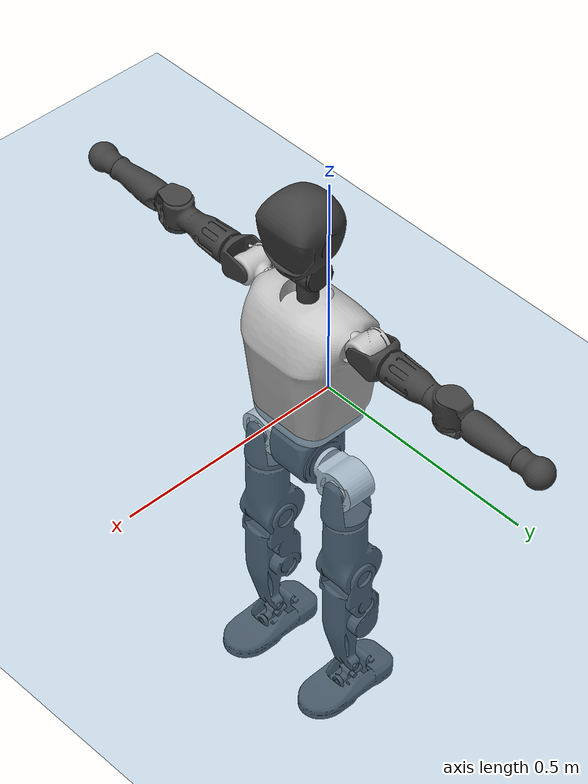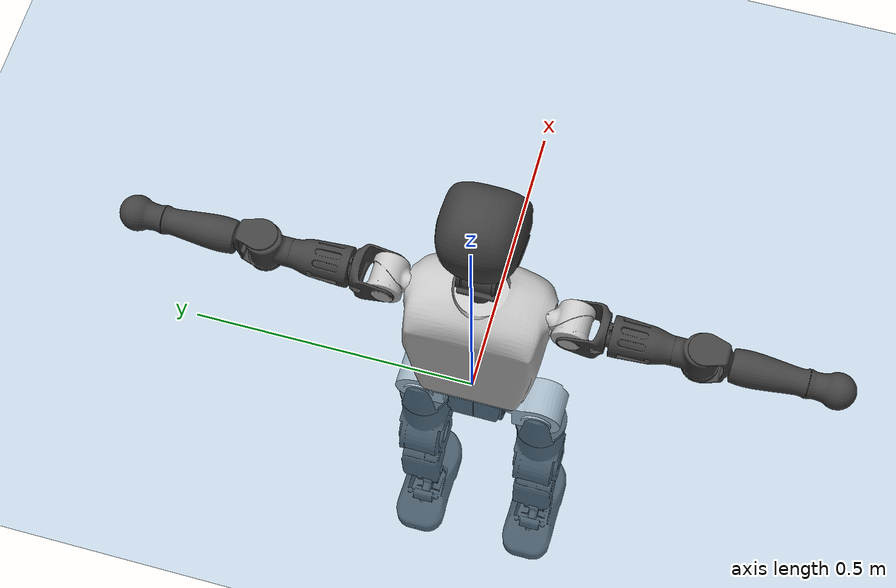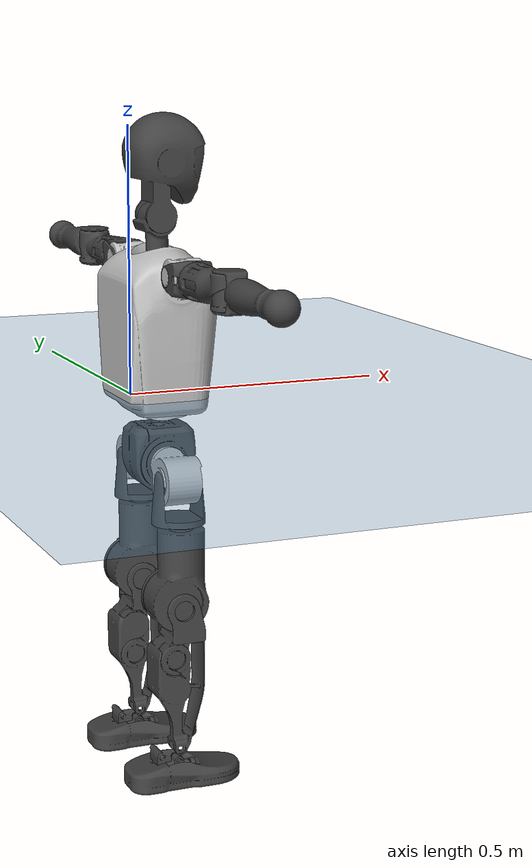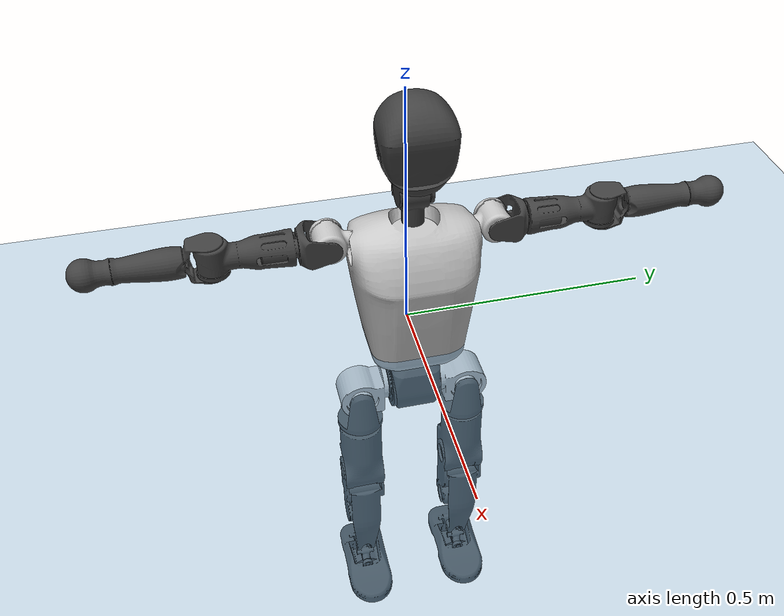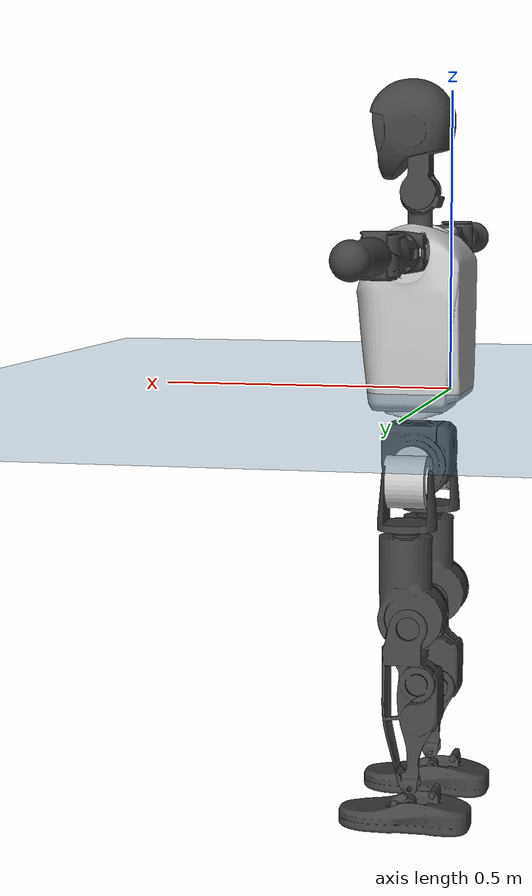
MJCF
<mujoco model="T1">
  <compiler angle="radian" assetdir="assets" balanceinertia="true" inertiafromgeom="false"/>

  <option timestep="0.005" density="1.2" viscosity="2e-05"/>

  <size nkey="1"/>

  <visual>
    <quality shadowsize="8192"/>
    <map shadowclip="0.5"/>
  </visual>

  <default>
    <default class="/">
      <joint armature="0.01" damping="0.01" frictionloss="0.1"/>
      <geom contype="0" conaffinity="0" group="1" solref="-1000 -80"/>
      <site size="0.01 0.005 0.005" group="5"/>
      <general forcelimited="true" biastype="affine" gainprm="25" biasprm="0 -25 -0.6"/>
      <default class="t1">
        <geom rgba="0.25 0.25 0.25 1"/>
        <default class="visual">
          <geom type="mesh" group="2"/>
        </default>
        <default class="collision">
          <geom group="3"/>
        </default>
        <default class="foot">
          <geom size="0.1115 0.05 0.015" type="box" condim="6" group="4" priority="1" solimp="0.015 1 0.015"/>
        </default>
        <default class="reward_collision_sphere">
          <geom group="5" rgba="1 0 0 1"/>
        </default>
      </default>
    </default>
  </default>

  <asset>
    <texture type="skybox" colorspace="auto" name="//unnamed_texture_0" builtin="gradient" rgb1="0.95 0.95 0.95" rgb2="0.95 0.95 0.95" width="100" height="600"/>
    <texture type="2d" colorspace="auto" name="texplane" builtin="checker" rgb1="0.345 0.575 0.748" rgb2="0.345 0.575 0.748" markrgb="1 1 1" width="512" height="512"/>
    <material name="MatPlane" class="/" texture="texplane" texuniform="true" texrepeat="2 2" specular="0.9"/>
    <mesh name="Trunk" class="/" file="Trunk.stl"/>
    <mesh name="H1" class="/" file="H1.stl"/>
    <mesh name="H2" class="/" file="H2.stl"/>
    <mesh name="AL1" class="/" file="AL1.stl"/>
    <mesh name="AL2" class="/" file="AL2.stl"/>
    <mesh name="AL3" class="/" file="AL3.stl"/>
    <mesh name="left_hand_link" class="/" file="left_hand_link.stl"/>
    <mesh name="AR1" class="/" file="AR1.stl"/>
    <mesh name="AR2" class="/" file="AR2.stl"/>
    <mesh name="AR3" class="/" file="AR3.stl"/>
    <mesh name="right_hand_link" class="/" file="right_hand_link.stl"/>
    <mesh name="Waist" class="/" file="Waist.stl"/>
    <mesh name="Hip_Pitch_Left" class="/" file="Hip_Pitch_Left.stl"/>
    <mesh name="Hip_Roll_Left" class="/" file="Hip_Roll_Left.stl"/>
    <mesh name="Hip_Yaw_Left" class="/" file="Hip_Yaw_Left.stl"/>
    <mesh name="Shank_Left" class="/" file="Shank_Left.stl"/>
    <mesh name="Ankle_Cross_Left" class="/" file="Ankle_Cross_Left.stl"/>
    <mesh name="left_foot_link" class="/" file="left_foot_link.stl"/>
    <mesh name="Hip_Pitch_Right" class="/" file="Hip_Pitch_Right.stl"/>
    <mesh name="Hip_Roll_Right" class="/" file="Hip_Roll_Right.stl"/>
    <mesh name="Hip_Yaw_Right" class="/" file="Hip_Yaw_Right.stl"/>
    <mesh name="Shank_Right" class="/" file="Shank_Right.stl"/>
    <mesh name="Ankle_Cross_Right" class="/" file="Ankle_Cross_Right.stl"/>
    <mesh name="right_foot_link" class="/" file="right_foot_link.stl"/>
  </asset>

  <worldbody>
    <geom name="floor" class="/" size="100 100 0.125" type="plane" group="0" material="MatPlane"/>
    <light name="toplight_shadow" class="/" pos="0 0 5" dir="0.0990148 0.0990148 -0.990148" type="directional" ambient="0.04 0.04 0.04" diffuse="0.55 0.55 0.55" specular="0.12 0.12 0.12"/>
    <light name="toplight_fill" class="/" pos="0 0 5" dir="0.0990148 0.0990148 -0.990148" type="directional" castshadow="false" ambient="0.04 0.04 0.04" diffuse="0.3 0.3 0.3" specular="0.08 0.08 0.08"/>
    <body name="trunk" childclass="t1" pos="-0.000254148 0.000644493 0.000272039" quat="1 -0.000537701 0.00012377 -0.000791542">
      <inertial pos="0.0457528 -0.00200272 0.115817" quat="0.999975 0.000538683 -0.00698618 -0.00085328" mass="11.4829" diaginertia="0.044176 0.0892171 0.0852382"/>
      <joint name="//unnamed_joint_0" type="free" armature="0" damping="0" frictionloss="0"/>
      <geom name="//unnamed_geom_1" class="visual" rgba="0.76 0.76 0.76 1" mesh="Trunk"/>
      <geom name="//unnamed_geom_2" class="collision" size="0.0746244 0.0994992 0.149249" pos="0.0517589 0 0.131323" type="box"/>
      <geom name="//unnamed_geom_3" class="reward_collision_sphere" size="0.114424" pos="0.0517589 0 0.109436"/>
      <geom name="//unnamed_geom_4" class="reward_collision_sphere" size="0.0149249" pos="0.0517589 0.0873776 0"/>
      <geom name="//unnamed_geom_5" class="reward_collision_sphere" size="0.0149249" pos="0.0517589 -0.0873776 0"/>
      <geom name="//unnamed_geom_6" class="reward_collision_sphere" size="0.0149249" pos="0.0517589 0.109993 0.196984"/>
      <geom name="//unnamed_geom_7" class="reward_collision_sphere" size="0.0149249" pos="0.0517589 -0.109993 0.196984"/>
      <site name="imu" pos="0.00200705 -0.00260899 -0.00207857" size="0.00994992"/>
      <camera name="track" pos="0 -2.05594 0" quat="0.707107 0.707107 0 0" mode="trackcom"/>
      <camera name="ego_camera" pos="0.105243 0 0.45963" quat="-0.5 -0.5 0.5 0.5"/>
      <body name="H1" pos="0.0541132 -0.000930658 0.264422" quat="1 0.000236658 0.000464282 6.80521e-05">
        <inertial pos="-0.00104567 0.000446075 0.0619829" quat="0.766014 -0.00458499 0.000765109 0.642807" mass="0.427506" diaginertia="0.000112505 0.00024575 0.000227705"/>
        <joint name="AAHead_yaw" pos="0 0 0" axis="-0.00163088 0.00920147 0.999956" stiffness="0.00625806" range="-1.55349 1.56832" armature="0.0100355" damping="0.00897397" frictionloss="0.0986257"/>
        <geom name="//unnamed_geom_8" class="visual" mesh="H1"/>
        <body name="H2" pos="-0.00077633 0.00178453 0.0683434" quat="1 -2.81078e-05 1.66867e-05 2.1842e-06">
          <inertial pos="0.00529612 0.00246756 0.10782" quat="0.988447 0.106289 -0.0744507 -0.0783106" mass="0.619144" diaginertia="0.000984052 0.00216952 0.00268879"/>
          <joint name="Head_pitch" pos="0 0 0" axis="-0.00494467 -0.999988 5.37071e-05" range="-1.21906 0.348803" armature="0.00895582" damping="0.00627553" frictionloss="0.111365"/>
          <geom name="//unnamed_geom_9" class="visual" mesh="H2"/>
          <geom name="//unnamed_geom_10" class="collision" size="0.0795994" pos="0.00862649 0 0.120379"/>
          <geom name="//unnamed_geom_11" class="reward_collision_sphere" size="0.0895493" pos="0.017253 0 0.109436"/>
        </body>
      </body>
      <body name="AL1" pos="0.051757 0.108326 0.237613" quat="1 1.08527e-05 0.00040813 -5.19332e-05">
        <inertial pos="-0.00274777 0.0466658 0.00109274" quat="0.50332 0.49783 -0.50284 0.49597" mass="0.524123" diaginertia="0.000650335 0.00148674 0.000454858"/>
        <joint name="Left_Shoulder_Pitch" pos="0 0 0" axis="-0.00508167 0.999933 0.0104396" range="-3.31584 1.23387" armature="0.00998576" damping="0.00695468" frictionloss="0.0983656"/>
        <geom name="//unnamed_geom_12" class="visual" rgba="0.76 0.76 0.76 1" mesh="AL1"/>
        <body name="AL2" pos="0.000102757 0.047929 -0.000642283" quat="1 2.95009e-06 9.0756e-06 0.00011952">
          <inertial pos="0.00292873 0.0395509 -0.00152551" quat="0.486928 0.514736 -0.489041 0.508712" mass="0.157619" diaginertia="0.000190625 0.000394967 0.00027869"/>
          <joint name="Left_Shoulder_Roll" pos="0 0 0" axis="-1 -0.000414085 0.000650935" range="-1.57021 1.74553" armature="0.010098" damping="0.00612376" frictionloss="0.100494"/>
          <geom name="//unnamed_geom_13" class="visual" mesh="AL2"/>
          <body name="AL3" pos="0.000483687 0.0619498 -0.000311489" quat="1 -3.33824e-05 -5.08514e-05 -0.000122113">
            <inertial pos="-0.000142956 0.0876603 0.000127847" quat="0.713475 0.700675 0.00155834 0.00253344" mass="1.00207" diaginertia="0.00610103 0.0147266 0.000946873"/>
            <joint name="Left_Elbow_Pitch" pos="0 0 0" axis="-0.000473248 -0.999999 -0.00131052" range="-2.25306 2.26959" armature="0.00996736" damping="0.022403" frictionloss="0.11034"/>
            <geom name="//unnamed_geom_14" class="visual" mesh="AL3"/>
            <geom name="//unnamed_geom_15" class="collision" size="0.0298498 0.0746244" pos="0 0.0513986 0" quat="0.707105 0.707108 0 0" type="cylinder"/>
            <geom name="//unnamed_geom_16" class="reward_collision_sphere" size="0.0358197"/>
            <body name="left_hand_link" pos="0.00222796 0.151805 0.00110883" quat="1 1.80571e-05 3.53249e-05 4.06322e-05">
              <inertial pos="0.00162664 0.112502 -0.00100371" quat="0.705574 0.708626 0.00369578 0.000508305" mass="0.32152" diaginertia="0.00386891 0.00955442 0.000341303"/>
              <joint name="Left_Elbow_Yaw" pos="0 0 0" axis="-0.000307085 -8.28344e-05 1" range="-2.45489 0.0156602" armature="0.00993816" damping="0.00826832" frictionloss="0.0992285"/>
              <geom name="//unnamed_geom_17" class="visual" mesh="left_hand_link"/>
              <geom name="//unnamed_geom_18" class="collision" size="0.0298498 0.0870618" pos="0 0.133636 0" quat="0.707105 0.707108 0 0" type="cylinder"/>
              <geom name="//unnamed_geom_19" class="reward_collision_sphere" size="0.0497496"/>
              <geom name="//unnamed_geom_20" class="reward_collision_sphere" size="0.0348247" pos="0 0.113077 0"/>
              <geom name="//unnamed_geom_21" class="reward_collision_sphere" size="0.0348247" pos="0 0.221014 0"/>
            </body>
          </body>
        </body>
      </body>
      <body name="AR1" pos="0.0485346 -0.110144 0.240086" quat="0.999999 -0.00103941 0.000298901 -0.000450606">
        <inertial pos="-0.00141825 -0.0454992 -0.000988398" quat="0.50506 0.49588 -0.50301 0.495983" mass="0.535015" diaginertia="0.000663213 0.00151273 0.000470668"/>
        <joint name="Right_Shoulder_Pitch" pos="0 0 0" axis="-0.000113902 -0.999998 -0.00201308" range="-1.22599 3.30763" armature="0.010445" damping="7.98768e-05" frictionloss="0.103836"/>
        <geom name="//unnamed_geom_22" class="visual" rgba="0.76 0.76 0.76 1" mesh="AR1"/>
        <body name="AR2" pos="-0.000738516 -0.0474013 -0.00196582" quat="1 -0.000120841 0.00035467 0.000703787">
          <inertial pos="0.00438137 -0.0398933 0.000622168" quat="0.512842 0.486286 -0.51166 0.488593" mass="0.157115" diaginertia="0.000190442 0.000391889 0.000276221"/>
          <joint name="Right_Shoulder_Roll" pos="0 0 0" axis="-0.999967 -0.00395906 0.00711416" range="-1.72286 1.58655" armature="0.0099785" damping="0.000757154" frictionloss="0.0976876"/>
          <geom name="//unnamed_geom_23" class="visual" mesh="AR2"/>
          <body name="AR3" pos="-0.000755245 -0.0628116 -0.00062655" quat="1 -0.000712856 0.000276299 0.0003878">
            <inertial pos="0.00200344 -0.087364 -0.000939086" quat="0.707464 0.706749 -0.000643521 -0.000329705" mass="1.00558" diaginertia="0.00631223 0.0152839 0.00100444"/>
            <joint name="Right_Elbow_Pitch" pos="0 0 0" axis="0.00162468 0.999997 -0.0015828" stiffness="0.00336475" range="-2.25162 2.22001" armature="0.0100084" damping="0.0113682" frictionloss="0.096039"/>
            <geom name="//unnamed_geom_24" class="visual" mesh="AR3"/>
            <geom name="//unnamed_geom_25" class="collision" size="0.0298498 0.0746244" pos="0 -0.0513986 0" quat="0.707105 0.707108 0 0" type="cylinder"/>
            <geom name="//unnamed_geom_26" class="reward_collision_sphere" size="0.0358197"/>
            <body name="right_hand_link" pos="-0.000477646 -0.151074 0.000903812" quat="1 -0.00064102 0.000304139 -1.88887e-05">
              <inertial pos="0.00171508 -0.113674 -0.0005584" quat="0.706727 0.707486 3.11074e-05 0.000320472" mass="0.309427" diaginertia="0.00367055 0.00905147 0.000335636"/>
              <joint name="Right_Elbow_Yaw" pos="0 0 0" axis="0.00116472 -0.000296109 0.999999" stiffness="0.0026196" range="-0.00505793 2.40659" armature="0.0104061" damping="0.00494834" frictionloss="0.100599"/>
              <geom name="//unnamed_geom_27" class="visual" mesh="right_hand_link"/>
              <geom name="//unnamed_geom_28" class="collision" size="0.0298498 0.0870618" pos="0 -0.133636 0" quat="0.707105 0.707108 0 0" type="cylinder"/>
              <geom name="//unnamed_geom_29" class="reward_collision_sphere" size="0.0497496"/>
              <geom name="//unnamed_geom_30" class="reward_collision_sphere" size="0.0348247" pos="0 -0.113077 0"/>
              <geom name="//unnamed_geom_31" class="reward_collision_sphere" size="0.0348247" pos="0 -0.221014 0"/>
            </body>
          </body>
        </body>
      </body>
      <body name="Waist" pos="0.0535567 -0.00281176 -0.126817" quat="1 5.34829e-05 -0.000196168 4.04043e-05">
        <inertial pos="0.000534548 0.000433612 0.00776539" quat="0.983764 0.00195586 -0.179458 8.49474e-05" mass="2.50433" diaginertia="0.0025953 0.00611838 0.00737127"/>
        <joint name="Waist" pos="0 0 0" axis="-0.00321261 -0.00518157 0.999981" stiffness="0.00203477" range="-1.55342 1.59045" armature="0.0102363" damping="0.000646227" frictionloss="0.0982134"/>
        <geom name="//unnamed_geom_32" class="visual" mesh="Waist"/>
        <body name="Hip_Pitch_Left" pos="0.00134809 0.109652 0.000142758" quat="1 0.000150818 -7.46908e-06 0.000175787">
          <inertial pos="0.00156812 -0.00726195 -0.0216864" quat="0.976034 0.217175 0.0131153 0.00454096" mass="1.02222" diaginertia="0.000870426 0.00169038 0.00198323"/>
          <joint name="Left_Hip_Pitch" pos="0 0 0" axis="-0.00054978 1 -0.000195877" range="-1.80286 1.60239" armature="0.0102574" damping="0.00264078" frictionloss="0.0984269"/>
          <geom name="//unnamed_geom_33" class="visual" rgba="0.76 0.76 0.76 1" mesh="Hip_Pitch_Left"/>
          <body name="Hip_Roll_Left" pos="0.00243941 0.000171435 -0.0231459" quat="1 -7.44646e-06 -1.75697e-06 -4.3635e-06">
            <inertial pos="0.00109866 0.000563622 -0.0601167" quat="0.707335 -0.00732806 -0.00731817 0.706803" mass="0.387755" diaginertia="0.000857596 0.00173935 0.000804352"/>
            <joint name="Left_Hip_Roll" pos="0 0 0" axis="-0.999997 -0.00112668 -0.00197106" range="-1.55073 0.241008" armature="0.0099235" damping="0.00465326" frictionloss="0.101823"/>
            <geom name="//unnamed_geom_34" class="visual" mesh="Hip_Roll_Left"/>
            <geom name="//unnamed_geom_35" class="reward_collision_sphere" size="0.0547246"/>
            <body name="Hip_Yaw_Left" pos="-0.000265405 0.0013812 -0.0877295" quat="1 -0.000140205 2.44609e-05 -0.000115598">
              <inertial pos="-0.00558043 -0.000370704 -0.0987108" quat="0.699588 -0.0331174 -0.0253128 0.71333" mass="2.0896" diaginertia="0.0120402 0.0280364 0.00400175"/>
              <joint name="Left_Hip_Yaw" pos="0 0 0" axis="0.000671759 -0.0017939 -0.999998" range="-1.00003 1.05402" armature="0.00978779" damping="0" frictionloss="0.0996133"/>
              <geom name="//unnamed_geom_36" class="visual" mesh="Hip_Yaw_Left"/>
              <geom name="//unnamed_geom_37" class="collision" size="0.0497496 0.0795994" type="cylinder"/>
              <body name="Shank_Left" pos="-0.0118724 0.00104744 -0.148984" quat="1 1.31598e-05 0.000201693 -0.000250427">
                <inertial pos="-0.00590129 0.000762104 -0.137382" quat="0.997684 0.00161078 -0.0237751 0.0637038" mass="1.73538" diaginertia="0.016822 0.0399279 0.0029118"/>
                <joint name="Left_Knee_Pitch" pos="0 0 0" axis="0.00401854 0.999979 0.0051097" stiffness="0.00216884" range="-0.00653923 2.34745" armature="0.00988696" damping="0.0168159" frictionloss="0.104164"/>
                <geom name="//unnamed_geom_38" class="visual" mesh="Shank_Left"/>
                <geom name="//unnamed_geom_39" class="collision" size="0.0497496 0.0746244" pos="0 0 -0.131323" type="cylinder"/>
                <geom name="//unnamed_geom_40" class="reward_collision_sphere" size="0.0646745"/>
                <body name="Ankle_Cross_Left" pos="0.00106079 0.000868472 -0.307933" quat="1 -0.000177113 0.000437617 0.000156757">
                  <inertial pos="-0.00497124 0.00208008 -0.00889832" quat="0.443112 0.551032 0.551027 0.443153" mass="0.0712909" diaginertia="1.37684e-05 2.86957e-05 1.77802e-05"/>
                  <joint name="Left_Ankle_Pitch" pos="0 0 0" axis="-0.00501438 0.999986 0.00162728" range="-0.875013 0.338267" armature="0.00917468" damping="0.00303294" frictionloss="0.0980019"/>
                  <geom name="//unnamed_geom_41" class="visual" mesh="Ankle_Cross_Left"/>
                  <body name="left_foot_link" pos="0.00067948 -0.000779507 -0.0114854" quat="0.999999 0.000215308 -0.0001754 -0.00113548">
                    <inertial pos="-0.00209887 -0.000308828 -0.00897048" quat="-0.00162681 0.61951 -0.000148818 0.784987" mass="0.671099" diaginertia="0.00127631 0.0027034 0.00346055"/>
                    <joint name="Left_Ankle_Roll" pos="0 0 0" axis="-0.999998 -0.0010273 -0.00141318" range="-0.476212 0.400865" armature="0.00973561" damping="0.00820223" frictionloss="0.0901984"/>
                    <geom name="//unnamed_geom_42" class="visual" mesh="left_foot_link"/>
                    <geom name="left_foot" class="foot" size="0.104117 0.0503039 0.0151469" pos="0.00862649 0 -0.0164153"/>
                    <geom name="//unnamed_geom_44" class="reward_collision_sphere" size="0.0517396" pos="0.00862649 0 -0.0164153"/>
                    <geom name="//unnamed_geom_45" class="reward_collision_sphere" size="0.0298498" pos="0.0819516 -0.0236433 -0.0164153"/>
                    <geom name="//unnamed_geom_46" class="reward_collision_sphere" size="0.0298498" pos="-0.0603854 -0.0236433 -0.0164153"/>
                    <site name="left_foot" class="foot" pos="0.00862649 0 -0.0164153" size="0.00994992"/>
                  </body>
                </body>
              </body>
            </body>
          </body>
        </body>
        <body name="Hip_Pitch_Right" pos="-0.00234507 -0.110604 2.62655e-06" quat="1 -0.000148305 4.96103e-05 -0.000286">
          <inertial pos="-0.000525915 0.00702444 -0.019724" quat="0.973766 -0.227119 0.0131037 -0.0050485" mass="1.00158" diaginertia="0.000882655 0.00168265 0.00199409"/>
          <joint name="Right_Hip_Pitch" pos="0 0 0" axis="0.000845673 -1 -0.000496767" stiffness="0.00541915" range="-1.55253 1.80684" armature="0.0101397" damping="0.00753829" frictionloss="0.10421"/>
          <geom name="//unnamed_geom_47" class="visual" rgba="0.76 0.76 0.76 1" mesh="Hip_Pitch_Right"/>
          <body name="Hip_Roll_Right" pos="0.00192176 -0.00195283 -0.0228533" quat="1 -5.26035e-06 1.74137e-05 -4.26598e-05">
            <inertial pos="0.00021415 -0.00107629 -0.0581438" quat="0.706352 -0.00718741 -0.00547555 0.707803" mass="0.38699" diaginertia="0.000827847 0.00175442 0.000808133"/>
            <joint name="Right_Hip_Roll" pos="0 0 0" axis="-1 -4.722e-05 -0.00010504" stiffness="0.00797982" range="-0.200087 1.52558" armature="0.00983953" damping="0" frictionloss="0.0890418"/>
            <geom name="//unnamed_geom_48" class="visual" mesh="Hip_Roll_Right"/>
            <geom name="//unnamed_geom_49" class="reward_collision_sphere" size="0.0547246"/>
            <body name="Hip_Yaw_Right" pos="0.00231872 -0.000748259 -0.0893134" quat="1 -5.76618e-05 -1.22398e-05 0.000115229">
              <inertial pos="-0.00595752 -0.000542957 -0.0974881" quat="0.717666 -0.0285038 -0.043976 0.694413" mass="2.11183" diaginertia="0.011966 0.0289796 0.00396069"/>
              <joint name="Right_Hip_Yaw" pos="0 0 0" axis="-0.0010418 0.00779895 -0.999969" stiffness="0.00118328" range="-0.994458 1.01047" armature="0.00953465" damping="0.0110341" frictionloss="0.102208"/>
              <geom name="//unnamed_geom_50" class="visual" mesh="Hip_Yaw_Right"/>
              <geom name="//unnamed_geom_51" class="collision" size="0.0497496 0.0795994" type="cylinder"/>
              <body name="Shank_Right" pos="-0.00963861 -0.000759056 -0.146562" quat="1 -4.71386e-05 4.58377e-06 -0.000108657">
                <inertial pos="-0.00594737 0.000447011 -0.134321" quat="0.999501 0.000326216 -0.0135829 -0.0285101" mass="1.80448" diaginertia="0.0172286 0.0407307 0.00312118"/>
                <joint name="Right_Knee_Pitch" pos="0 0 0" axis="-0.00552785 -0.999969 0.00563532" range="-2.34036 0.000390399" armature="0.00990744" damping="0.0182891" frictionloss="0.0973594"/>
                <geom name="//unnamed_geom_52" class="visual" mesh="Shank_Right"/>
                <geom name="//unnamed_geom_53" class="collision" size="0.0497496 0.0746244" pos="0 0 -0.131323" type="cylinder"/>
                <geom name="//unnamed_geom_54" class="reward_collision_sphere" size="0.0646745"/>
                <body name="Ankle_Cross_Right" pos="-0.000636772 -0.000814963 -0.307887" quat="1 -0.000253953 -0.000319268 0.000543823">
                  <inertial pos="-0.00369136 0.00145636 -0.00867118" quat="0.443033 0.551359 0.550779 0.443134" mass="0.0722001" diaginertia="1.34614e-05 2.94847e-05 1.7651e-05"/>
                  <joint name="Right_Ankle_Pitch" pos="0 0 0" axis="0.000481555 -1 0.000575156" range="-0.398088 0.87184" armature="0.0100738" damping="0.0075184" frictionloss="0.098757"/>
                  <geom name="//unnamed_geom_55" class="visual" mesh="Ankle_Cross_Right"/>
                  <body name="right_foot_link" pos="0.00174528 0.000328263 -0.0135063" quat="1 -1.14995e-06 2.47298e-05 4.0277e-05">
                    <inertial pos="0.000130016 0.00103764 -0.00986794" quat="0.00333985 0.620587 0.000750478 0.784131" mass="0.705878" diaginertia="0.00131984 0.00278449 0.00344172"/>
                    <joint name="Right_Ankle_Roll" pos="0 0 0" axis="-0.999987 -0.00463156 0.00225541" range="-0.436779 0.444967" armature="0.0102533" damping="0.00903758" frictionloss="0.0885623"/>
                    <geom name="//unnamed_geom_56" class="visual" mesh="right_foot_link"/>
                    <geom name="right_foot" class="foot" size="0.0995925 0.0467401 0.0149797" pos="0.00862649 0 -0.0164153"/>
                    <geom name="//unnamed_geom_58" class="reward_collision_sphere" size="0.0397997"/>
                    <geom name="//unnamed_geom_59" class="reward_collision_sphere" size="0.0298498" pos="0.00862649 0 -0.0164153"/>
                    <geom name="//unnamed_geom_60" class="reward_collision_sphere" size="0.0298498" pos="0.0819516 0.0236433 -0.0164153"/>
                    <geom name="//unnamed_geom_61" class="reward_collision_sphere" size="0.0298498" pos="-0.0603854 0.0236433 -0.0164153"/>
                    <site name="right_foot" class="foot" pos="0.00862649 0 -0.0164153" size="0.00994992"/>
                  </body>
                </body>
              </body>
            </body>
          </body>
        </body>
      </body>
    </body>
  </worldbody>

  <contact>
    <pair class="/" geom1="floor" geom2="left_foot" name="//unnamed_contact_0"/>
    <pair class="/" geom1="floor" geom2="right_foot" name="//unnamed_contact_1"/>
  </contact>

  <actuator>
    <general name="AAHead_yaw" class="/" joint="AAHead_yaw" forcerange="-7.21865 7.21865" gainprm="23.3472" biasprm="0 -23.3472 -0.571059"/>
    <general name="Head_pitch" class="/" joint="Head_pitch" forcerange="-6.70934 6.70934" gainprm="23.3472" biasprm="0 -23.3472 -0.571059"/>
    <general name="Left_Shoulder_Pitch" class="/" joint="Left_Shoulder_Pitch" forcerange="-16.1999 16.1999" gainprm="23.3472" biasprm="0 -23.3472 -0.571059"/>
    <general name="Left_Shoulder_Roll" class="/" joint="Left_Shoulder_Roll" forcerange="-17.9354 17.9354" gainprm="23.3472" biasprm="0 -23.3472 -0.571059"/>
    <general name="Left_Elbow_Pitch" class="/" joint="Left_Elbow_Pitch" forcerange="-18.4413 18.4413" gainprm="23.3472" biasprm="0 -23.3472 -0.571059"/>
    <general name="Left_Elbow_Yaw" class="/" joint="Left_Elbow_Yaw" forcerange="-18.2353 18.2353" gainprm="23.3472" biasprm="0 -23.3472 -0.571059"/>
    <general name="Right_Shoulder_Pitch" class="/" joint="Right_Shoulder_Pitch" forcerange="-18.1723 18.1723" gainprm="23.3472" biasprm="0 -23.3472 -0.571059"/>
    <general name="Right_Shoulder_Roll" class="/" joint="Right_Shoulder_Roll" forcerange="-17.8937 17.8937" gainprm="23.3472" biasprm="0 -23.3472 -0.571059"/>
    <general name="Right_Elbow_Pitch" class="/" joint="Right_Elbow_Pitch" forcerange="-18.263 18.263" gainprm="23.3472" biasprm="0 -23.3472 -0.571059"/>
    <general name="Right_Elbow_Yaw" class="/" joint="Right_Elbow_Yaw" forcerange="-18.1179 18.1179" gainprm="23.3472" biasprm="0 -23.3472 -0.571059"/>
    <general name="Waist" class="/" joint="Waist" forcerange="-30.6479 30.6479" gainprm="23.3472" biasprm="0 -23.3472 -0.571059"/>
    <general name="Left_Hip_Pitch" class="/" joint="Left_Hip_Pitch" forcerange="-43.8445 43.8445" gainprm="23.3472" biasprm="0 -23.3472 -0.571059"/>
    <general name="Left_Hip_Roll" class="/" joint="Left_Hip_Roll" forcerange="-30.5263 30.5263" gainprm="23.3472" biasprm="0 -23.3472 -0.571059"/>
    <general name="Left_Hip_Yaw" class="/" joint="Left_Hip_Yaw" forcerange="-30.4907 30.4907" gainprm="23.3472" biasprm="0 -23.3472 -0.571059"/>
    <general name="Left_Knee_Pitch" class="/" joint="Left_Knee_Pitch" forcerange="-57.2017 57.2017" gainprm="23.3472" biasprm="0 -23.3472 -0.571059"/>
    <general name="Left_Ankle_Pitch" class="/" joint="Left_Ankle_Pitch" forcerange="-21.4597 21.4597" gainprm="23.3472" biasprm="0 -23.3472 -0.571059"/>
    <general name="Left_Ankle_Roll" class="/" joint="Left_Ankle_Roll" forcerange="-13.9867 13.9867" gainprm="23.3472" biasprm="0 -23.3472 -0.571059"/>
    <general name="Right_Hip_Pitch" class="/" joint="Right_Hip_Pitch" forcerange="-45.1573 45.1573" gainprm="23.3472" biasprm="0 -23.3472 -0.571059"/>
    <general name="Right_Hip_Roll" class="/" joint="Right_Hip_Roll" forcerange="-31.7155 31.7155" gainprm="23.3472" biasprm="0 -23.3472 -0.571059"/>
    <general name="Right_Hip_Yaw" class="/" joint="Right_Hip_Yaw" forcerange="-29.0352 29.0352" gainprm="23.3472" biasprm="0 -23.3472 -0.571059"/>
    <general name="Right_Knee_Pitch" class="/" joint="Right_Knee_Pitch" forcerange="-58.862 58.862" gainprm="23.3472" biasprm="0 -23.3472 -0.571059"/>
    <general name="Right_Ankle_Pitch" class="/" joint="Right_Ankle_Pitch" forcerange="-19.7583 19.7583" gainprm="23.3472" biasprm="0 -23.3472 -0.571059"/>
    <general name="Right_Ankle_Roll" class="/" joint="Right_Ankle_Roll" forcerange="-15.651 15.651" gainprm="23.3472" biasprm="0 -23.3472 -0.571059"/>
  </actuator>

  <sensor>
    <gyro site="imu" name="imu_angular_velocity"/>
    <velocimeter site="imu" name="imu_linear_velocity"/>
    <framelinvel objtype="site" objname="left_foot" name="left_foot_global_linear_velocity"/>
    <framelinvel objtype="site" objname="right_foot" name="right_foot_global_linear_velocity"/>
  </sensor>

  <keyframe>
    <key name="home" qpos="0 0 0.6385 1 0 0 0 0 0 0 1.4 0 -0.4 0 -1.4 0 0.4 0 -0.4 0 0 0.8 -0.4 0 0.4 0 0 -0.8 0.4 0"/>
  </keyframe>
</mujoco>
